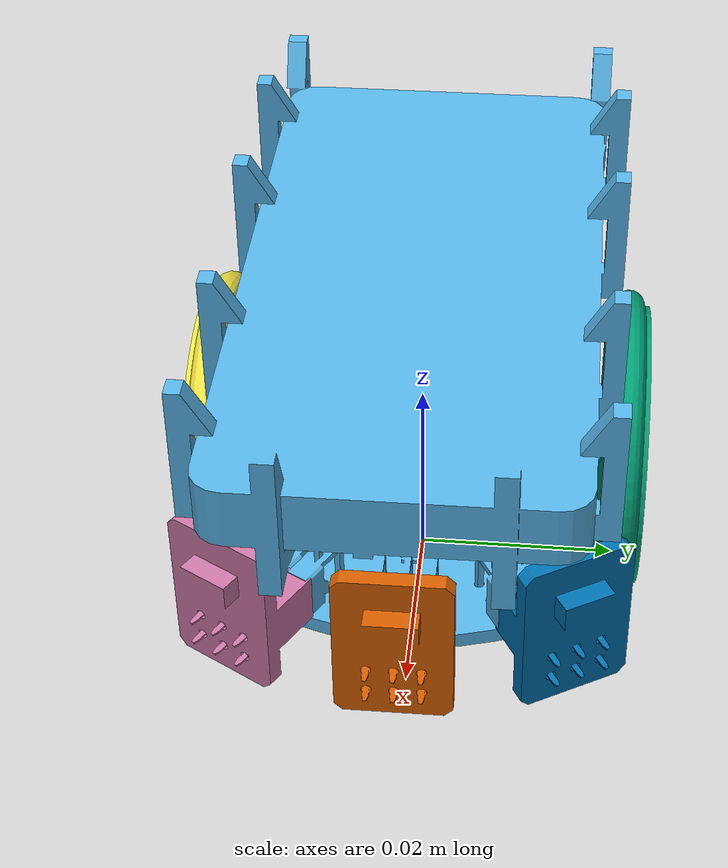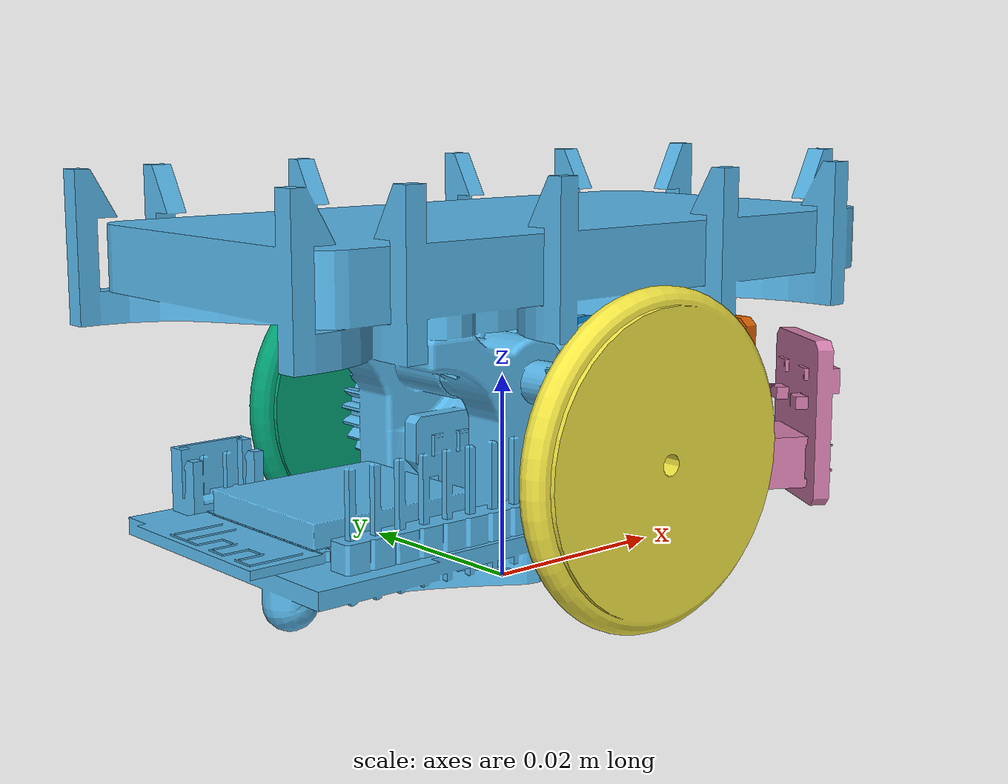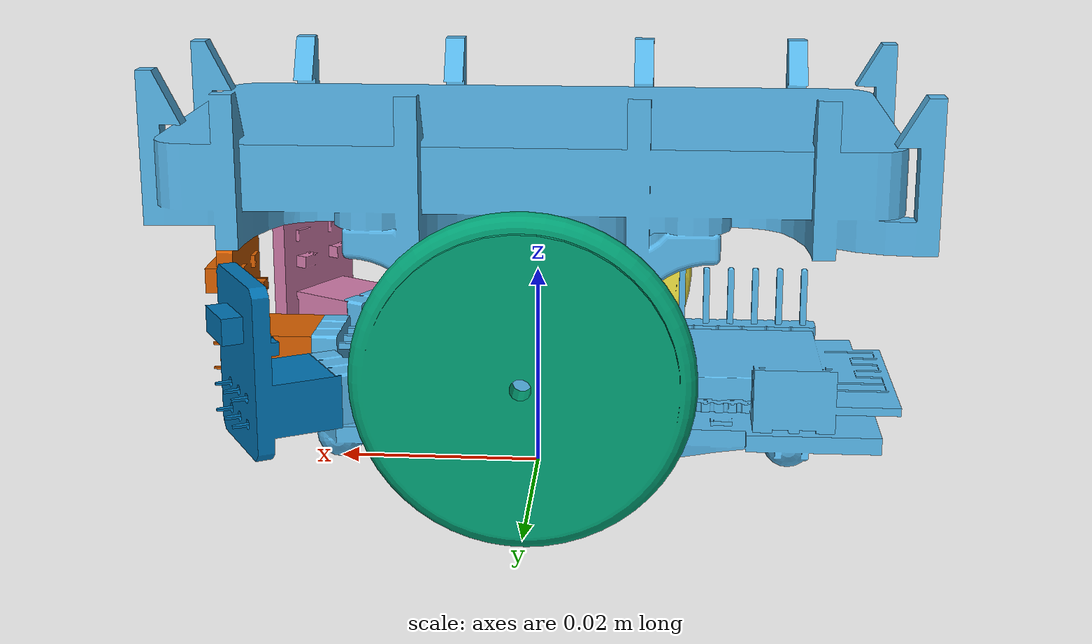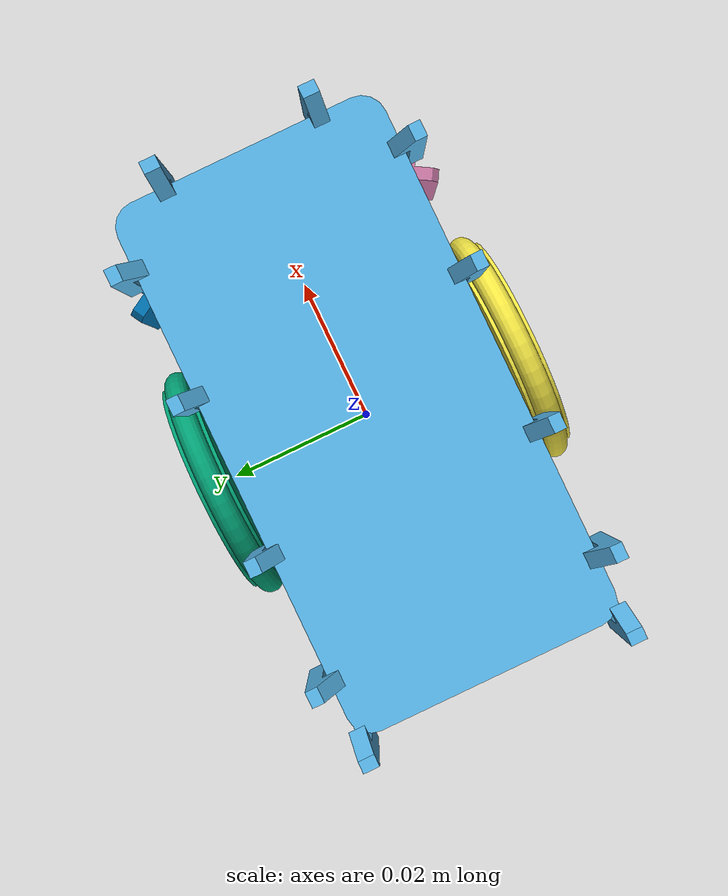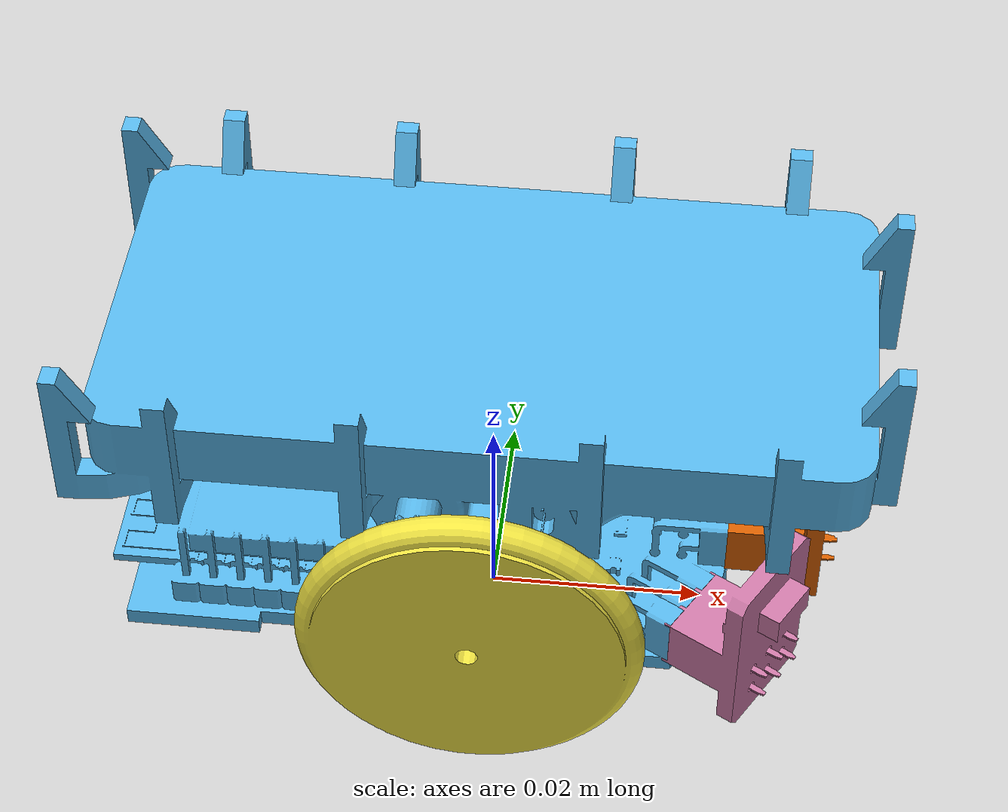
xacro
<?xml version="1.0"?>
<robot xmlns:xacro="http://www.ros.org/wiki/xacro"
       name="PuLSAR">

<xacro:include filename="$(find pulsar_description)/urdf/chassis/chassis.urdf.xacro"/>
<xacro:include filename="$(find pulsar_description)/urdf/wheel/wheel.urdf.xacro"/>
<xacro:include filename="$(find pulsar_description)/urdf/laser_range_finder/laser_range_finder.urdf.xacro"/>
<xacro:include filename="$(find pulsar_description)/urdf/imu/imu.urdf.xacro"/>

<xacro:arg name="robot_ns" default="/"/>

<link name="base_link"/>

<gazebo>
    <self_collide>false</self_collide>
    <plugin name="pulsar_plugin" filename="libpulsar_gazebo_plugin.so">
        <!-- ROS parameters -->
        <namespace>$(arg robot_ns)</namespace>
        <odomTopic>odometry/raw</odomTopic>
        <cmdVelTopic>cmd_vel</cmdVelTopic>
        <imuTopic>imu/data</imuTopic>
        <robotTfPrefix>$(arg robot_ns)</robotTfPrefix>

        <!-- EKF parameters -->
        <Q_x>1e-6</Q_x>
        <Q_y>1e-6</Q_y>
        <Q_th>1e-6</Q_th>
        <Q_x_dot>1e-6</Q_x_dot>
        <Q_th_dot>1e-6</Q_th_dot>

        <!-- Motor controller parameters -->
        <motorKp>0.04</motorKp>
        <motorKi>0.5</motorKi>
        <motorMaxTorque>0.006</motorMaxTorque>

        <!-- Odometry parameters -->
        <cpr>4000</cpr>
        <wheelRadius>0.015</wheelRadius>
        <wheelSeparation>0.0375</wheelSeparation>
        <updateRate>10</updateRate>
        <odomUniformNoise>0.01</odomUniformNoise>

        <!-- Wheel joints -->
        <leftWheelJointName>left_wheel_joint</leftWheelJointName>
        <rightWheelJointName>right_wheel_joint</rightWheelJointName>
    </plugin>
</gazebo>

<xacro:chassis/>
<xacro:wheel name="left" side="1"/>
<xacro:wheel name="right" side="-1"/>
<xacro:laser_range_finder name="left_range_finder" yaw="0.5236"/>
<xacro:laser_range_finder name="middle_range_finder" yaw="0.0"/>
<xacro:laser_range_finder name="right_range_finder" yaw="-0.5236"/>
<xacro:imu/>

</robot>

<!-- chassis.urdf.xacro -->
<robot xmlns:xacro="http://www.ros.org/wiki/xacro">

<xacro:macro name="chassis">
    <link name="chassis">
        <visual name="chassis_visual">
            <origin xyz="0.036 0.0195 0" rpy="1.57 0 -1.57"/>
            <geometry>
                <mesh filename="$(find pulsar_description)/meshes/chassis.stl"
                      scale="0.001 0.001 0.001"/>
            </geometry>
        </visual>

        <collision name="lower_chassis_collision">
            <origin xyz="-0.005 0 0.008" rpy="0 0 0"/>
            <geometry>
                <box size="0.06 0.036 0.003"/>
            </geometry>
        </collision>
        <collision name="upper_chassis_collision">
            <origin xyz="0 0 0.037" rpy="0 0 0"/>
            <geometry>
                <box size="0.07 0.04 0.005"/>
            </geometry>
        </collision>
        <collision name="front_caster_collision">
            <origin xyz="0.02 0 0.004" rpy="0 0 0"/>
            <geometry>
                <sphere radius="0.003"/>
            </geometry>
        </collision>
        <collision name="rear_caster_collision">
            <origin xyz="-0.025 0 0.004" rpy="0 0 0"/>
            <geometry>
                <sphere radius="0.003"/>
            </geometry>
        </collision>

        <inertial>
            <origin xyz="-0.01 0 0.02" rpy="0 0 0"/>
            <mass value="0.05"/>
            <inertia ixx="1.042e-5" ixy="0.0" ixz="0.0"
                     iyy="2.417e-5" iyz="0.0" izz="2.708e-5"/>
        </inertial>

    </link>

    <joint name="chassis_joint" type="fixed">
        <parent link="base_link"/>
        <child link="chassis"/>
    </joint>

    <gazebo reference="chassis::front_caster_collision">
        <contact>
            <collide_without_contact>true</collide_without_contact>
        </contact>
        <friction>
            <ode>
                <min_depth>0.002</min_depth>
                <mu>0.02</mu>
                <mu2>0.02</mu2>
            </ode>
            <bullet>
                <friction>0.02</friction>
                <friction2>0.02</friction2>
                <rolling_friction>1</rolling_friction>
            </bullet>
        </friction>
    </gazebo>

    <gazebo reference="chassis::rear_caster_collision">
        <contact>
            <collide_without_contact>true</collide_without_contact>
            <ode>
                <min_depth>0.002</min_depth>
            </ode>
        </contact>
        <friction>
            <ode>
                <mu>0.02</mu>
                <mu2>0.02</mu2>
            </ode>
            <bullet>
                <friction>0.02</friction>
                <friction2>0.02</friction2>
                <rolling_friction>1</rolling_friction>
            </bullet>
        </friction>
    </gazebo>
</xacro:macro>

</robot>

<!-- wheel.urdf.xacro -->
<robot xmlns:xacro="http://www.ros.org/wiki/xacro">

<xacro:macro name="wheel" params="side name">
    <link name="${name}_wheel_link">
        <visual name="${name}_wheel_visual">
            <origin xyz="-0.0155 ${side*0.015} -0.0155" rpy="1.57 0 0"/>
            <geometry>
                <mesh filename="$(find pulsar_description)/meshes/wheel.stl"
                      scale="0.001 0.001 ${side*0.001}"/>
            </geometry>
        </visual>
        <collision name="${name}_wheel_collision">
            <origin xyz="0 0 0" rpy="1.57 0 0"/>
            <geometry>
                <cylinder radius="0.015" length="0.004"/>
            </geometry>
        </collision>
        <inertial>
            <origin xyz="0 0 0" rpy="0 0 0"/>
            <mass value="0.005"/>
            <inertia ixx="2.879e-7" ixy="0.0" ixz="0.0"
                     iyy="5.625e-7" iyz="0.0" izz="2.879e-7"/>
        </inertial>
    </link>

    <joint name="${name}_wheel_joint" type="continuous">
        <origin xyz="0 ${side*0.02} 0.015" rpy="0 0 0"/>
        <limit effort="0.006" velocity="7"/>
        <dynamics damping="${0.25*0.006/7}" friction="0.0006"/>
        <axis xyz="0 1 0" rpy="0 0 0"/>
        <parent link="chassis"/>
        <child link="${name}_wheel_link"/>
    </joint>

    <gazebo reference="${name}_wheel_link::{name}_wheel_collision">
        <friction>
            <bullet>
                <friction>0.8</friction>
                <friction2>0.8</friction2>
                <rolling_friction>0.01</rolling_friction>
            </bullet>
        </friction>
    </gazebo>
</xacro:macro>

</robot>

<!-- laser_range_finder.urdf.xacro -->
<robot xmlns:xacro="http://www.ros.org/wiki/xacro">

<xacro:property name="cone_angle" value="0.26"/>
<xacro:property name="update_rate" value="10"/>

<xacro:macro name="laser_range_finder" params="name yaw">
    <link name="${name}_link">
        <visual name="${name}_visual">
            <origin xyz="-0.010 -0.134 -0.012" rpy="1.57 0 1.57"/>
            <geometry>
                <mesh filename="$(find pulsar_description)/meshes/laser_range_PCB.stl"
                      scale="0.001 0.001 0.001"/>
            </geometry>
        </visual>
        <collision name="${name}_collision">
            <origin xyz="-0.002 0 -0.004" rpy="0 0 0"/>
            <geometry>
                <box size="0.002 0.012 0.015"/>
            </geometry>
        </collision>
    </link>

    <joint name="${name}_joint" type="fixed">
        <origin xyz="${0.034*cos(yaw)-0.002} ${0.034*sin(yaw)} 0.019"
                rpy="0 0 ${yaw}"/>
        <parent link="chassis"/>
        <child link="${name}_link"/>
    </joint>

    <gazebo reference="${name}_link">
        <sensor type="ray" name="${name}_sensor">
            <pose>0 0 0 0 0 0</pose>
            <update_rate>${update_rate}</update_rate>
            <ray>
                <scan>
                    <horizontal>
                        <samples>5</samples>
                        <resolution>1.0</resolution>
                        <min_angle>${-cone_angle/2}</min_angle>
                        <max_angle>${cone_angle/2}</max_angle>
                    </horizontal>
                    <vertical>
                        <samples>5</samples>
                        <resolution>1.0</resolution>
                        <min_angle>${-cone_angle/2}</min_angle>
                        <max_angle>${cone_angle/2}</max_angle>
                    </vertical>
                </scan>
                <range>
                    <min>0.01</min>
                    <max>2.00</max>
                    <resolution>0.01</resolution>
                </range>
            </ray>
            <plugin filename="libgazebo_ros_range.so"
                    name="${name}_plugin">
                <gaussianNoise>0.005</gaussianNoise>
                <alwaysOn>true</alwaysOn>
                <updateRate>${update_rate}</updateRate>
                <topicName>${name}/range</topicName>
                <frameName>$(arg robot_ns)/${name}_link</frameName>
                <fov>0.5</fov>
                <radiation>infrared</radiation>
            </plugin>
        </sensor>
    </gazebo>
</xacro:macro>

</robot>
